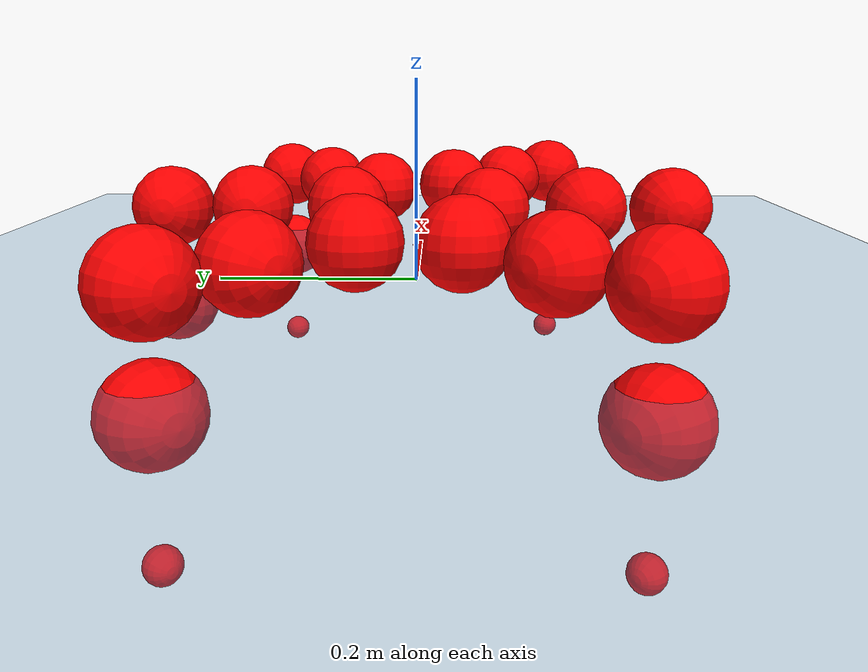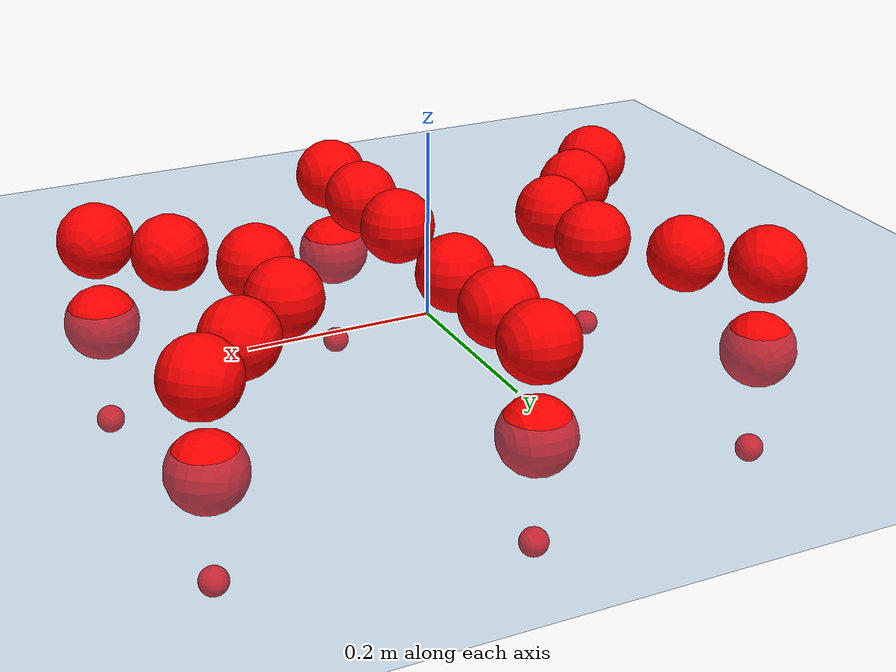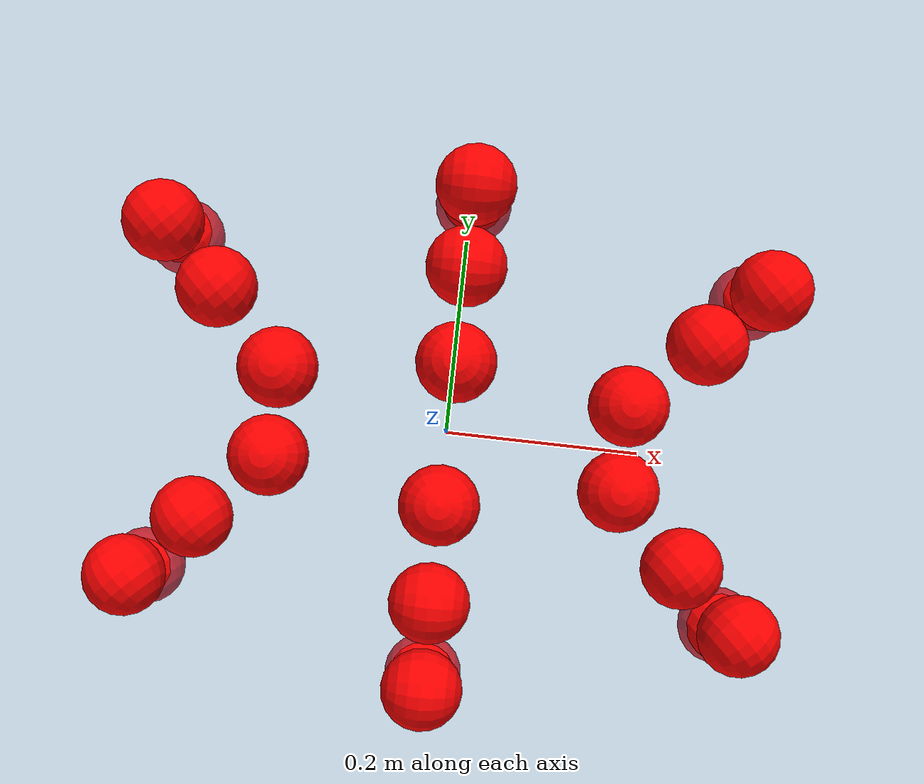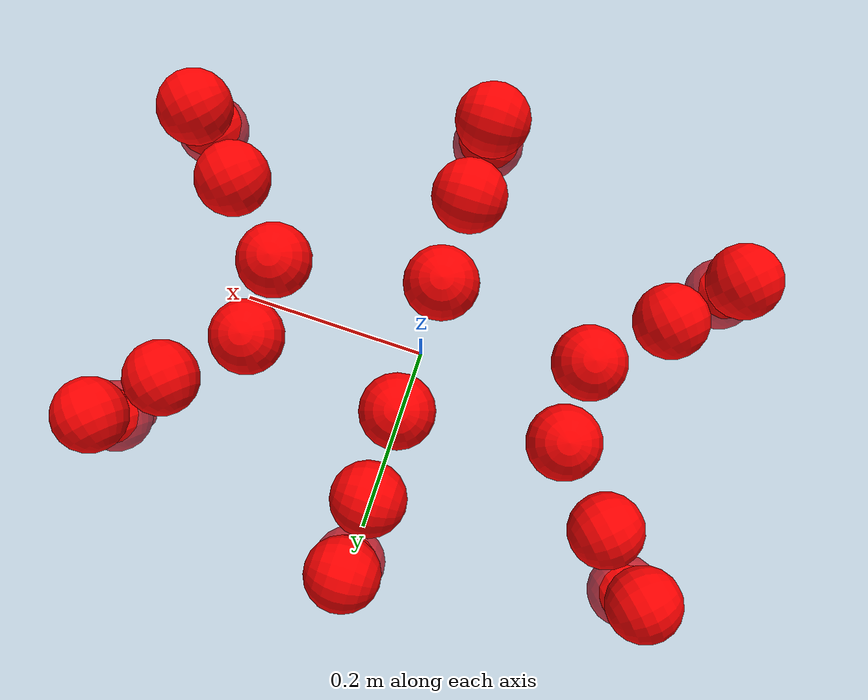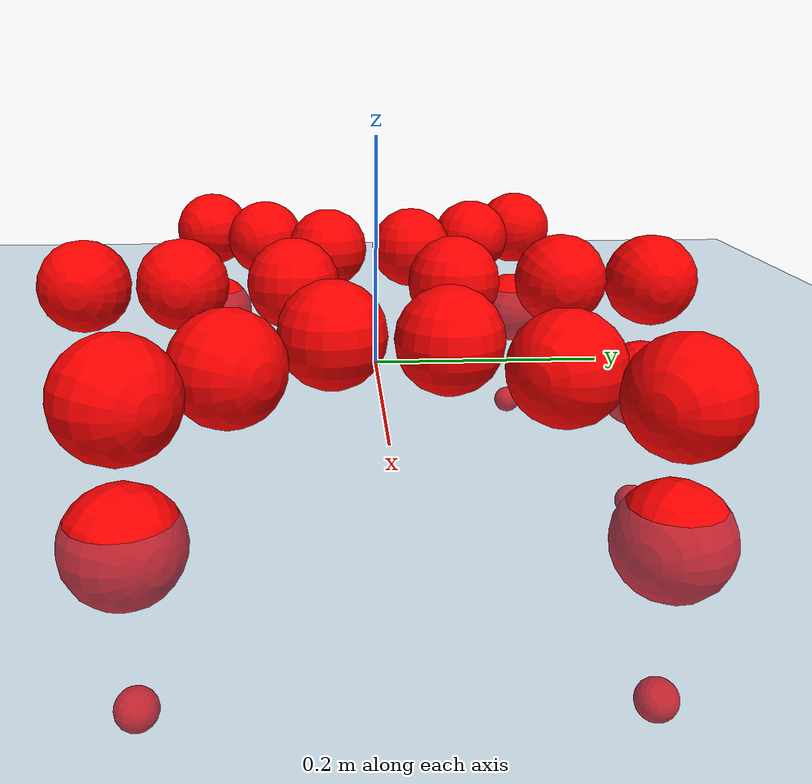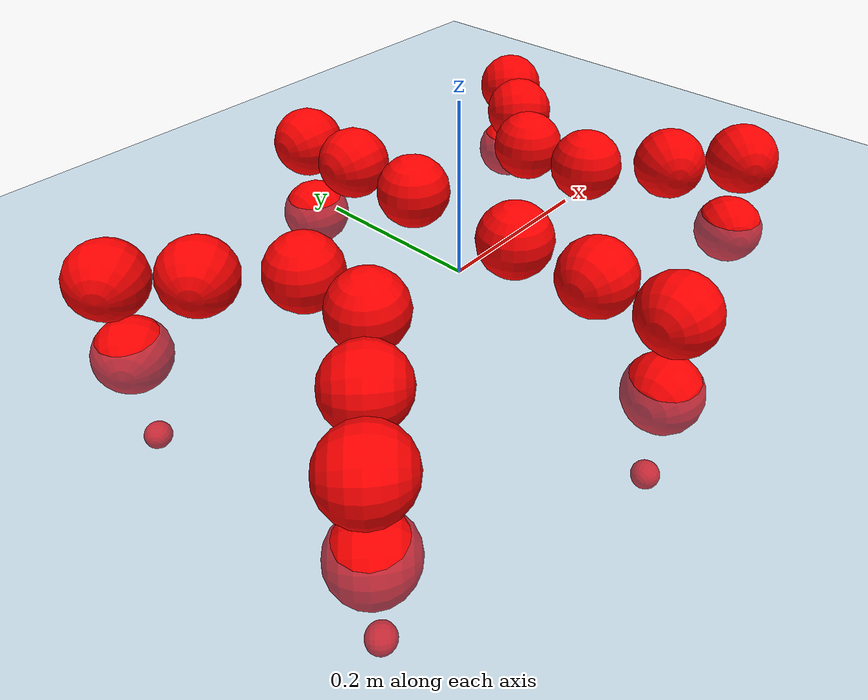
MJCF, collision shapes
<mujoco model="Golem">
  <compiler angle="radian" assetdir="assets" balanceinertia="true" inertiafromgeom="false"/>

  <option timestep="0.005" density="1.2" viscosity="2e-05"/>

  <size nkey="1"/>

  <visual>
    <quality shadowsize="8192"/>
    <map shadowclip="0.5"/>
  </visual>

  <default>
    <default class="/">
      <joint armature="0.01" damping="0.01" frictionloss="0.01"/>
      <geom contype="0" conaffinity="0" group="1" solref="-1000 -80"/>
      <site size="0.01 0.005 0.005" group="5"/>
      <general forcelimited="true" biastype="affine" gainprm="25" biasprm="0 -25 -0.5"/>
      <default class="visual">
        <geom type="mesh" group="2"/>
      </default>
      <default class="collision">
        <geom group="3"/>
      </default>
      <default class="foot">
        <geom size="0.01 0 0" condim="6" group="4" priority="1" solimp="0.015 1 0.01"/>
      </default>
      <default class="reward_collision_sphere">
        <geom group="5" rgba="1 0 0 1"/>
      </default>
    </default>
  </default>

  <asset>
    <texture type="skybox" colorspace="auto" name="//unnamed_texture_0" builtin="gradient" rgb1="0.95 0.95 0.95" rgb2="0.95 0.95 0.95" width="100" height="600"/>
    <texture type="2d" colorspace="auto" name="texplane" builtin="checker" rgb1="0.345 0.575 0.748" rgb2="0.345 0.575 0.748" markrgb="1 1 1" width="512" height="512"/>
    <material name="MatPlane" class="/" texture="texplane" texuniform="true" texrepeat="2 2" specular="0.9"/>
    <mesh name="body" class="/" file="body.stl" scale="0.001 0.001 0.001"/>
    <mesh name="coxa" class="/" file="coxa.stl" scale="0.001 0.001 0.001"/>
    <mesh name="femur" class="/" file="femur.stl" scale="0.001 0.001 0.001"/>
    <mesh name="tibia" class="/" file="tibia.stl" scale="0.001 0.001 0.001"/>
    <mesh name="tarsus" class="/" file="tarsus.stl" scale="0.001 0.001 0.001"/>
  </asset>

  <worldbody>
    <geom name="floor" class="/" size="100 100 0.125" type="plane" group="0" material="MatPlane"/>
    <light name="toplight_shadow" class="/" pos="0 0 5" dir="0.0990148 0.0990148 -0.990148" type="directional" ambient="0.04 0.04 0.04" diffuse="0.55 0.55 0.55" specular="0.12 0.12 0.12"/>
    <light name="toplight_fill" class="/" pos="0 0 5" dir="0.0990148 0.0990148 -0.990148" type="directional" castshadow="false" ambient="0.04 0.04 0.04" diffuse="0.3 0.3 0.3" specular="0.08 0.08 0.08"/>
    <body name="trunk" pos="0.0021082 -9.26457e-05 -0.000406253" quat="1 -2.76475e-05 4.40004e-06 -2.63213e-05">
      <inertial pos="-0.000363114 -0.000381909 -0.0025875" quat="1 -4.28896e-05 -9.12421e-05 2.64546e-05" mass="3.70172" diaginertia="0.0154794 0.00286707 0.0195354"/>
      <joint name="//unnamed_joint_0" type="free"/>
      <geom name="//unnamed_geom_1" class="/" pos="0 0 0.0732474" quat="1 0 0 0" type="mesh" rgba="0.9 0.9 0.9 1" mesh="body"/>
      <site name="imu" class="/" pos="0.151621 0.00838235 0.109714" size="0.0100791"/>
      <camera name="track" class="/" pos="0 -1.56741 0" quat="0.707107 0.707107 0 0" mode="trackcom"/>
      <camera name="ego_camera" class="/" pos="0.14242 0 0.114449" quat="-0.5 -0.5 0.5 0.5"/>
      <body name="coxa_RR" pos="-0.196334 -0.0649217 0.0724235" quat="0.382683 3.50363e-06 -7.69738e-06 -0.92388">
        <inertial pos="0.000277295 -0.00222265 0.00144588" quat="0.999995 -0.00249398 -0.000915241 0.00167703" mass="0.198287" diaginertia="0.0156243 0.00292261 0.0193389"/>
        <joint name="coxa_joint_RR" class="/" pos="0 0 0" axis="0.000600968 -0.00702691 -0.999975" range="-3.14242 3.13849" armature="0.00941868" damping="0" frictionloss="0.0100912"/>
        <geom name="//unnamed_geom_2" class="/" type="mesh" rgba="0.2 0.2 0.2 1" mesh="coxa"/>
        <geom name="//unnamed_geom_3" class="reward_collision_sphere" size="0.0403165" pos="-0.0328662 0 0"/>
        <body name="femur_RR" pos="0.0634154 0.000525012 -0.00134268" quat="0.499807 -0.500085 0.500054 0.500054">
          <inertial pos="0.000688727 0.000901744 0.000188404" quat="0.999988 0.00117137 0.00084528 0.00467145" mass="0.204028" diaginertia="0.0157601 0.00291406 0.0201716"/>
          <joint name="femur_joint_RR" class="/" pos="0 0 0" axis="-0.00400069 0.00391104 -0.999984" range="-3.17211 3.12766" armature="0.0104801" damping="0.0021699" frictionloss="0.0107786"/>
          <geom name="//unnamed_geom_4" class="/" type="mesh" rgba="0.9 0.9 0.9 1" mesh="femur"/>
          <geom name="//unnamed_geom_5" class="reward_collision_sphere" size="0.0403165"/>
          <body name="tibia_RR" pos="-0.000589513 -0.0874546 0.00261355" quat="-0.000916042 0.999999 0.000363036 -0.000256528">
            <inertial pos="-0.00158737 0.00067871 -0.000169877" quat="1 0.000281556 -0.000383331 0.000201669" mass="0.207632" diaginertia="0.015687 0.00298983 0.0196191"/>
            <joint name="tibia_joint_RR" class="/" pos="0 0 0" axis="-0.000246566 0.00630533 0.99998" range="-3.15603 3.13944" armature="0.0100874" damping="0.00308201" frictionloss="0.0100879"/>
            <geom name="//unnamed_geom_6" class="/" type="mesh" rgba="0.2 0.2 0.2 1" mesh="tibia"/>
            <geom name="//unnamed_geom_7" class="reward_collision_sphere" size="0.0403165"/>
            <body name="tarsus_RR" pos="0.0973455 0.00143961 0.00133246" quat="1 4.27073e-05 -8.60191e-05 -2.24235e-05">
              <inertial pos="0.0684151 0.000700767 -0.000763767" quat="0.50203 0.499093 0.497326 0.501537" mass="0.202912" diaginertia="0.0155544 0.0029166 0.0194258"/>
              <joint name="tarsus_joint_RR" class="/" pos="0 0 0" axis="-0.00215812 -0.00302704 0.999993" range="-3.17 3.14319" armature="0.0105089" damping="0.0385336" frictionloss="0.0104228"/>
              <geom name="//unnamed_geom_8" class="/" type="mesh" rgba="0.9 0.9 0.9 1" mesh="tarsus"/>
              <geom name="foot_1" class="foot" size="0.00997697" pos="0.1227 0 0" quat="0 -0.707107 0 0.707107"/>
              <geom name="//unnamed_geom_10" class="reward_collision_sphere" size="0.0403165"/>
              <geom name="//unnamed_geom_11" class="reward_collision_sphere" size="0.0151187" pos="0.11777 0 0"/>
              <site name="foot_1" class="foot" pos="0.1227 0 0" quat="0 -0.707107 0 0.707107" size="0.0100791"/>
            </body>
          </body>
        </body>
      </body>
      <body name="coxa_RM" pos="-0.000774326 -0.105367 0.073809" quat="0.707064 5.91214e-05 2.82868e-05 -0.707149">
        <inertial pos="0.000919249 0.000149279 0.00145488" quat="0.999992 0.00284634 -0.00252078 0.00109492" mass="0.206818" diaginertia="0.015859 0.00287266 0.0197163"/>
        <joint name="coxa_joint_RM" class="/" pos="0 0 0" axis="0.00112355 -0.00066221 -0.999999" range="-3.11845 3.13662" armature="0.010126" damping="0.00462629" frictionloss="0.00885349"/>
        <geom name="//unnamed_geom_12" class="/" type="mesh" rgba="0.2 0.2 0.2 1" mesh="coxa"/>
        <geom name="//unnamed_geom_13" class="reward_collision_sphere" size="0.0403165" pos="-0.0328662 0 0"/>
        <body name="femur_RM" pos="0.0633776 0.000780665 0.000642094" quat="0.49942 -0.499603 0.50049 0.500486">
          <inertial pos="-0.000623271 0.000731437 6.441e-05" quat="0.999987 -0.00413034 0.0026773 0.00144481" mass="0.210105" diaginertia="0.0162372 0.00299253 0.0201366"/>
          <joint name="femur_joint_RM" class="/" pos="0 0 0" axis="0.0009576 0.000320804 -0.999999" range="-3.1285 3.13469" armature="0.0104452" damping="0.0128932" frictionloss="0.0100687"/>
          <geom name="//unnamed_geom_14" class="/" type="mesh" rgba="0.9 0.9 0.9 1" mesh="femur"/>
          <geom name="//unnamed_geom_15" class="reward_collision_sphere" size="0.0403165"/>
          <body name="tibia_RM" pos="0.000242721 -0.0845564 0.00173098" quat="4.74395e-06 1 -3.79272e-06 4.74017e-06">
            <inertial pos="0.000536469 -0.00240986 7.15832e-05" quat="0.999962 0.00414436 0.00748651 0.00172367" mass="0.20315" diaginertia="0.0160465 0.00308004 0.0198737"/>
            <joint name="tibia_joint_RM" class="/" pos="0 0 0" axis="0.00112228 0.00242626 0.999996" stiffness="0.00037583" range="-3.1749 3.18741" armature="0.0100483" damping="0.0131442" frictionloss="0.00977345"/>
            <geom name="//unnamed_geom_16" class="/" type="mesh" rgba="0.2 0.2 0.2 1" mesh="tibia"/>
            <geom name="//unnamed_geom_17" class="reward_collision_sphere" size="0.0403165"/>
            <body name="tarsus_RM" pos="0.0954644 0.000304651 0.000836397" quat="1 -0.000143845 6.59841e-05 6.51151e-05">
              <inertial pos="0.0649429 0.000157756 0.0012198" quat="0.494351 0.500483 0.496374 0.508671" mass="0.210707" diaginertia="0.0154799 0.00296368 0.0194009"/>
              <joint name="tarsus_joint_RM" class="/" pos="0 0 0" axis="1.14856e-05 -0.00119829 0.999999" range="-3.13577 3.15593" armature="0.00964484" damping="0.00436406" frictionloss="0.010217"/>
              <geom name="//unnamed_geom_18" class="/" type="mesh" rgba="0.9 0.9 0.9 1" mesh="tarsus"/>
              <geom name="foot_2" class="foot" size="0.00977912" pos="0.1227 0 0" quat="0 -0.707107 0 0.707107"/>
              <geom name="//unnamed_geom_20" class="reward_collision_sphere" size="0.0403165"/>
              <geom name="//unnamed_geom_21" class="reward_collision_sphere" size="0.0151187" pos="0.11777 0 0"/>
              <site name="foot_2" class="foot" pos="0.1227 0 0" quat="0 -0.707107 0 0.707107" size="0.0100791"/>
            </body>
          </body>
        </body>
      </body>
      <body name="coxa_RF" pos="0.19536 -0.0629948 0.0755649" quat="0.923835 -0.000175298 -0.000165541 -0.38279">
        <inertial pos="0.00101808 -0.00032966 0.000472823" quat="1 -8.34821e-05 0.000778354 0.000187054" mass="0.204788" diaginertia="0.0157413 0.00292328 0.0198967"/>
        <joint name="coxa_joint_RF" class="/" pos="0 0 0" axis="-0.00466277 -0.00263818 -0.999986" range="-3.13685 3.12387" armature="0.0108064" damping="0.00969028" frictionloss="0.0103249"/>
        <geom name="//unnamed_geom_22" class="/" type="mesh" rgba="0.2 0.2 0.2 1" mesh="coxa"/>
        <geom name="//unnamed_geom_23" class="reward_collision_sphere" size="0.0403165" pos="-0.0328662 0 0"/>
        <body name="femur_RF" pos="0.0647891 0.00101487 -0.00211242" quat="0.500158 -0.500272 0.49964 0.49993">
          <inertial pos="-0.000806948 -0.000432844 0.000272087" quat="0.99999 0.00273779 -0.00273864 0.00218261" mass="0.206202" diaginertia="0.0157794 0.0029819 0.0202866"/>
          <joint name="femur_joint_RF" class="/" pos="0 0 0" axis="-0.000665135 2.90591e-05 -1" range="-3.18329 3.11817" armature="0.00923761" damping="0.0125071" frictionloss="0.0106074"/>
          <geom name="//unnamed_geom_24" class="/" type="mesh" rgba="0.9 0.9 0.9 1" mesh="femur"/>
          <geom name="//unnamed_geom_25" class="reward_collision_sphere" size="0.0403165"/>
          <body name="tibia_RF" pos="-0.00170353 -0.0857719 0.00197791" quat="-8.89371e-05 1 -4.60457e-05 -4.72582e-05">
            <inertial pos="-0.00217471 -0.000123046 0.000517103" quat="1 -0.000476921 -0.000174616 -0.000338519" mass="0.208447" diaginertia="0.015704 0.00294281 0.0196271"/>
            <joint name="tibia_joint_RF" class="/" pos="0 0 0" axis="0.00874065 -0.00351202 0.999956" range="-3.12348 3.09365" armature="0.0105415" damping="0.0135377" frictionloss="0.0100858"/>
            <geom name="//unnamed_geom_26" class="/" type="mesh" rgba="0.2 0.2 0.2 1" mesh="tibia"/>
            <geom name="//unnamed_geom_27" class="reward_collision_sphere" size="0.0403165"/>
            <body name="tarsus_RF" pos="0.0952378 0.00179229 0.00183512" quat="0.999999 0.000871156 0.000614173 1.74909e-05">
              <inertial pos="0.0658269 -0.000326983 -0.000225902" quat="0.500115 0.500528 0.499879 0.499477" mass="0.20328" diaginertia="0.0157375 0.00296805 0.0195848"/>
              <joint name="tarsus_joint_RF" class="/" pos="0 0 0" axis="0.000314856 -0.00425983 0.999991" range="-3.12023 3.15272" armature="0.010058" damping="0.00200251" frictionloss="0.0103606"/>
              <geom name="//unnamed_geom_28" class="/" type="mesh" rgba="0.9 0.9 0.9 1" mesh="tarsus"/>
              <geom name="foot_3" class="foot" size="0.0103762" pos="0.1227 0 0" quat="0 -0.707107 0 0.707107"/>
              <geom name="//unnamed_geom_30" class="reward_collision_sphere" size="0.0403165"/>
              <geom name="//unnamed_geom_31" class="reward_collision_sphere" size="0.0151187" pos="0.11777 0 0"/>
              <site name="foot_3" class="foot" pos="0.1227 0 0" quat="0 -0.707107 0 0.707107" size="0.0100791"/>
            </body>
          </body>
        </body>
      </body>
      <body name="coxa_LR" pos="-0.196562 0.0683369 0.0726647" quat="0.382643 6.77361e-05 -0.000118316 0.923896">
        <inertial pos="-0.00178652 -0.0008791 -0.00162973" quat="0.999938 -0.00859241 -0.0065789 -0.00256628" mass="0.20545" diaginertia="0.0159122 0.00307292 0.0195642"/>
        <joint name="coxa_joint_LR" class="/" pos="0 0 0" axis="0.0132097 -0.00343722 -0.999907" range="-3.12125 3.14822" armature="0.010153" damping="0.0188215" frictionloss="0.00947539"/>
        <geom name="//unnamed_geom_32" class="/" type="mesh" rgba="0.2 0.2 0.2 1" mesh="coxa"/>
        <geom name="//unnamed_geom_33" class="reward_collision_sphere" size="0.0403165" pos="-0.0328662 0 0"/>
        <body name="femur_LR" pos="0.0668794 -0.00250241 -0.00232989" quat="0.499878 -0.50007 0.500181 0.499871">
          <inertial pos="0.000729097 0.000365751 -0.000570227" quat="0.999999 0.000533512 0.00056834 0.00137947" mass="0.204957" diaginertia="0.0156863 0.00299445 0.019453"/>
          <joint name="femur_joint_LR" class="/" pos="0 0 0" axis="0.00156481 9.66758e-05 0.999999" range="-3.159 3.12918" armature="0.0098447" damping="0.0132628" frictionloss="0.00891101"/>
          <geom name="//unnamed_geom_34" class="/" type="mesh" rgba="0.9 0.9 0.9 1" mesh="femur"/>
          <geom name="//unnamed_geom_35" class="reward_collision_sphere" size="0.0403165"/>
          <body name="tibia_LR" pos="-0.000180465 -0.0843382 0.000230084" quat="0.000501191 1 -0.000831835 0.000117418">
            <inertial pos="2.87925e-05 0.000538014 1.96354e-05" quat="1 -1.39562e-05 2.53077e-05 -0.000106232" mass="0.200672" diaginertia="0.0157306 0.00296799 0.0193846"/>
            <joint name="tibia_joint_LR" class="/" pos="0 0 0" axis="-0.00409622 -0.00153554 -0.99999" range="-3.12958 3.1159" armature="0.00983522" damping="0.0100138" frictionloss="0.0103443"/>
            <geom name="//unnamed_geom_36" class="/" type="mesh" rgba="0.2 0.2 0.2 1" mesh="tibia"/>
            <geom name="//unnamed_geom_37" class="reward_collision_sphere" size="0.0403165"/>
            <body name="tarsus_LR" pos="0.0957901 -0.00102656 0.00232126" quat="0.999999 -0.000501953 0.00094878 0.000233502">
              <inertial pos="0.0688956 0.000630456 -0.00213422" quat="0.499841 0.500072 0.499948 0.500139" mass="0.201705" diaginertia="0.0155841 0.00289187 0.0192618"/>
              <joint name="tarsus_joint_LR" class="/" pos="0 0 0" axis="0.000656446 0.00459847 -0.999989" range="-3.16836 3.10984" armature="0.0103555" damping="0" frictionloss="0.0095628"/>
              <geom name="//unnamed_geom_38" class="/" type="mesh" rgba="0.9 0.9 0.9 1" mesh="tarsus"/>
              <geom name="foot_4" class="foot" size="0.00993621" pos="0.1227 0 0" quat="0.707107 0 -0.707107 0"/>
              <geom name="//unnamed_geom_40" class="reward_collision_sphere" size="0.0403165"/>
              <geom name="//unnamed_geom_41" class="reward_collision_sphere" size="0.0151187" pos="0.11777 0 0"/>
              <site name="foot_4" class="foot" pos="0.1227 0 0" quat="0.707107 0 -0.707107 0" size="0.0100791"/>
            </body>
          </body>
        </body>
      </body>
      <body name="coxa_LM" pos="0.000664548 0.101756 0.0747219" quat="0.707018 -1.26685e-05 -5.52538e-05 0.707196">
        <inertial pos="-0.000641723 0.00100712 0.0011677" quat="0.999999 0.00108737 -0.00028738 0.00020409" mass="0.20753" diaginertia="0.0160572 0.00300773 0.0199185"/>
        <joint name="coxa_joint_LM" class="/" pos="0 0 0" axis="8.12109e-05 0.000102346 -1" range="-3.11064 3.14785" armature="0.00972701" damping="0.00300902" frictionloss="0.0106649"/>
        <geom name="//unnamed_geom_42" class="/" type="mesh" rgba="0.2 0.2 0.2 1" mesh="coxa"/>
        <geom name="//unnamed_geom_43" class="reward_collision_sphere" size="0.0403165" pos="-0.0328662 0 0"/>
        <body name="femur_LM" pos="0.0618858 0.000402865 0.000866497" quat="0.499883 -0.500049 0.500023 0.500045">
          <inertial pos="-0.000802875 -0.00164527 0.00235383" quat="0.999946 -0.00478401 0.00253265 0.00892579" mass="0.202718" diaginertia="0.0155172 0.00283608 0.0191806"/>
          <joint name="femur_joint_LM" class="/" pos="0 0 0" axis="0.00453247 0.000317655 0.99999" range="-3.14175 3.11488" armature="0.00999163" damping="0.00560063" frictionloss="0.0101543"/>
          <geom name="//unnamed_geom_44" class="/" type="mesh" rgba="0.9 0.9 0.9 1" mesh="femur"/>
          <geom name="//unnamed_geom_45" class="reward_collision_sphere" size="0.0403165"/>
          <body name="tibia_LM" pos="0.000952732 -0.0808731 -0.00103881" quat="-0.000109798 0.999999 -0.000852047 0.000925375">
            <inertial pos="-0.000409556 -0.003098 -0.00101483" quat="0.999999 0.000901768 0.000965621 0.000843583" mass="0.207511" diaginertia="0.0155883 0.00302367 0.0193971"/>
            <joint name="tibia_joint_LM" class="/" pos="0 0 0" axis="0.003413 -0.00103452 -0.999994" range="-3.14374 3.12017" armature="0.0109134" damping="0" frictionloss="0.0102941"/>
            <geom name="//unnamed_geom_46" class="/" type="mesh" rgba="0.2 0.2 0.2 1" mesh="tibia"/>
            <geom name="//unnamed_geom_47" class="reward_collision_sphere" size="0.0403165"/>
            <body name="tarsus_LM" pos="0.0980618 -5.21638e-05 -0.000443822" quat="0.999999 0.000384042 0.000999064 -0.000537237">
              <inertial pos="0.065476 0.000672739 0.000446064" quat="0.499975 0.499927 0.499886 0.500211" mass="0.1999" diaginertia="0.0155069 0.00288784 0.0192588"/>
              <joint name="tarsus_joint_LM" class="/" pos="0 0 0" axis="0.000403857 -0.00176408 -0.999998" range="-3.09229 3.12481" armature="0.0109459" damping="0" frictionloss="0.00959549"/>
              <geom name="//unnamed_geom_48" class="/" type="mesh" rgba="0.9 0.9 0.9 1" mesh="tarsus"/>
              <geom name="foot_5" class="foot" size="0.00976776" pos="0.1227 0 0" quat="0.707107 0 -0.707107 0"/>
              <geom name="//unnamed_geom_50" class="reward_collision_sphere" size="0.0403165"/>
              <geom name="//unnamed_geom_51" class="reward_collision_sphere" size="0.0151187" pos="0.11777 0 0"/>
              <site name="foot_5" class="foot" pos="0.1227 0 0" quat="0.707107 0 -0.707107 0" size="0.0100791"/>
            </body>
          </body>
        </body>
      </body>
      <body name="coxa_LF" pos="0.19719 0.0678881 0.0710375" quat="0.923868 0.000133369 -8.33635e-05 0.382711">
        <inertial pos="-4.85983e-05 0.000594614 0.00127116" quat="0.999997 0.00107904 -0.00219247 -0.000921102" mass="0.199689" diaginertia="0.0154321 0.00286599 0.0190453"/>
        <joint name="coxa_joint_LF" class="/" pos="0 0 0" axis="-0.00450228 0.00203637 -0.999988" range="-3.12271 3.18419" armature="0.0108876" damping="0.00130701" frictionloss="0.00988011"/>
        <geom name="//unnamed_geom_52" class="/" type="mesh" rgba="0.2 0.2 0.2 1" mesh="coxa"/>
        <geom name="//unnamed_geom_53" class="reward_collision_sphere" size="0.0403165" pos="-0.0328662 0 0"/>
        <body name="femur_LF" pos="0.0651967 -0.00133103 0.000282925" quat="0.499179 -0.500424 0.500442 0.499953">
          <inertial pos="0.00223548 0.00027543 0.000376485" quat="0.999991 -0.00331528 0.00247678 0.000300394" mass="0.207587" diaginertia="0.0159394 0.00300273 0.0198129"/>
          <joint name="femur_joint_LF" class="/" pos="0 0 0" axis="-0.000856063 -0.00351209 0.999993" range="-3.13745 3.13274" armature="0.0108965" damping="0.00923941" frictionloss="0.0104569"/>
          <geom name="//unnamed_geom_54" class="/" type="mesh" rgba="0.9 0.9 0.9 1" mesh="femur"/>
          <geom name="//unnamed_geom_55" class="reward_collision_sphere" size="0.0403165"/>
          <body name="tibia_LF" pos="0.000502061 -0.0831322 0.0012955" quat="-0.000386041 1 0.000134315 -9.32265e-05">
            <inertial pos="1.03044e-05 0.00104671 -0.000874723" quat="0.99999 0.00130069 -0.00325724 0.00285637" mass="0.207078" diaginertia="0.0159967 0.00298226 0.0197082"/>
            <joint name="tibia_joint_LF" class="/" pos="0 0 0" axis="-0.00203978 -7.82846e-05 -0.999998" range="-3.13992 3.14912" armature="0.0100389" damping="0" frictionloss="0.009798"/>
            <geom name="//unnamed_geom_56" class="/" type="mesh" rgba="0.2 0.2 0.2 1" mesh="tibia"/>
            <geom name="//unnamed_geom_57" class="reward_collision_sphere" size="0.0403165"/>
            <body name="tarsus_LF" pos="0.0961026 -6.51325e-06 -0.000649306" quat="0.999999 -0.000495019 -0.000310953 0.000843891">
              <inertial pos="0.0667831 0.000882378 0.000723701" quat="0.500811 0.502267 0.497354 0.499555" mass="0.201464" diaginertia="0.0157064 0.00296637 0.0192709"/>
              <joint name="tarsus_joint_LF" class="/" pos="0 0 0" axis="0.000231167 0.00431451 -0.999991" stiffness="0.0276724" range="-3.15862 3.12382" armature="0.00999809" damping="0.030188" frictionloss="0.00981747"/>
              <geom name="//unnamed_geom_58" class="/" type="mesh" rgba="0.9 0.9 0.9 1" mesh="tarsus"/>
              <geom name="foot_6" class="foot" size="0.0102834" pos="0.1227 0 0" quat="0.707107 0 -0.707107 0"/>
              <geom name="//unnamed_geom_60" class="reward_collision_sphere" size="0.0403165"/>
              <geom name="//unnamed_geom_61" class="reward_collision_sphere" size="0.0151187" pos="0.11777 0 0"/>
              <site name="foot_6" class="foot" pos="0.1227 0 0" quat="0.707107 0 -0.707107 0" size="0.0100791"/>
            </body>
          </body>
        </body>
      </body>
    </body>
  </worldbody>

  <contact>
    <pair class="/" geom1="floor" geom2="foot_1" name="//unnamed_contact_0"/>
    <pair class="/" geom1="floor" geom2="foot_2" name="//unnamed_contact_1"/>
    <pair class="/" geom1="floor" geom2="foot_3" name="//unnamed_contact_2"/>
    <pair class="/" geom1="floor" geom2="foot_4" name="//unnamed_contact_3"/>
    <pair class="/" geom1="floor" geom2="foot_5" name="//unnamed_contact_4"/>
    <pair class="/" geom1="floor" geom2="foot_6" name="//unnamed_contact_5"/>
  </contact>

  <actuator>
    <general name="coxa_joint_RR" class="/" joint="coxa_joint_RR" forcerange="-7.5013 7.5013" gainprm="24.2417" biasprm="0 -24.2417 -0.536885"/>
    <general name="femur_joint_RR" class="/" joint="femur_joint_RR" forcerange="-7.39513 7.39513" gainprm="24.2417" biasprm="0 -24.2417 -0.536885"/>
    <general name="tibia_joint_RR" class="/" joint="tibia_joint_RR" forcerange="-7.33223 7.33223" gainprm="24.2417" biasprm="0 -24.2417 -0.536885"/>
    <general name="tarsus_joint_RR" class="/" joint="tarsus_joint_RR" forcerange="-7.6205 7.6205" gainprm="24.2417" biasprm="0 -24.2417 -0.536885"/>
    <general name="coxa_joint_RM" class="/" joint="coxa_joint_RM" forcerange="-6.74477 6.74477" gainprm="24.2417" biasprm="0 -24.2417 -0.536885"/>
    <general name="femur_joint_RM" class="/" joint="femur_joint_RM" forcerange="-7.45893 7.45893" gainprm="24.2417" biasprm="0 -24.2417 -0.536885"/>
    <general name="tibia_joint_RM" class="/" joint="tibia_joint_RM" forcerange="-7.34263 7.34263" gainprm="24.2417" biasprm="0 -24.2417 -0.536885"/>
    <general name="tarsus_joint_RM" class="/" joint="tarsus_joint_RM" forcerange="-7.50791 7.50791" gainprm="24.2417" biasprm="0 -24.2417 -0.536885"/>
    <general name="coxa_joint_RF" class="/" joint="coxa_joint_RF" forcerange="-6.80383 6.80383" gainprm="24.2417" biasprm="0 -24.2417 -0.536885"/>
    <general name="femur_joint_RF" class="/" joint="femur_joint_RF" forcerange="-7.45162 7.45162" gainprm="24.2417" biasprm="0 -24.2417 -0.536885"/>
    <general name="tibia_joint_RF" class="/" joint="tibia_joint_RF" forcerange="-6.71703 6.71703" gainprm="24.2417" biasprm="0 -24.2417 -0.536885"/>
    <general name="tarsus_joint_RF" class="/" joint="tarsus_joint_RF" forcerange="-7.21934 7.21934" gainprm="24.2417" biasprm="0 -24.2417 -0.536885"/>
    <general name="coxa_joint_LR" class="/" joint="coxa_joint_LR" forcerange="-7.33883 7.33883" gainprm="24.2417" biasprm="0 -24.2417 -0.536885"/>
    <general name="femur_joint_LR" class="/" joint="femur_joint_LR" forcerange="-7.42071 7.42071" gainprm="24.2417" biasprm="0 -24.2417 -0.536885"/>
    <general name="tibia_joint_LR" class="/" joint="tibia_joint_LR" forcerange="-7.3001 7.3001" gainprm="24.2417" biasprm="0 -24.2417 -0.536885"/>
    <general name="tarsus_joint_LR" class="/" joint="tarsus_joint_LR" forcerange="-7.07937 7.07937" gainprm="24.2417" biasprm="0 -24.2417 -0.536885"/>
    <general name="coxa_joint_LM" class="/" joint="coxa_joint_LM" forcerange="-7.7304 7.7304" gainprm="24.2417" biasprm="0 -24.2417 -0.536885"/>
    <general name="femur_joint_LM" class="/" joint="femur_joint_LM" forcerange="-7.34362 7.34362" gainprm="24.2417" biasprm="0 -24.2417 -0.536885"/>
    <general name="tibia_joint_LM" class="/" joint="tibia_joint_LM" forcerange="-7.2091 7.2091" gainprm="24.2417" biasprm="0 -24.2417 -0.536885"/>
    <general name="tarsus_joint_LM" class="/" joint="tarsus_joint_LM" forcerange="-7.43568 7.43568" gainprm="24.2417" biasprm="0 -24.2417 -0.536885"/>
    <general name="coxa_joint_LF" class="/" joint="coxa_joint_LF" forcerange="-6.70201 6.70201" gainprm="24.2417" biasprm="0 -24.2417 -0.536885"/>
    <general name="femur_joint_LF" class="/" joint="femur_joint_LF" forcerange="-7.28326 7.28326" gainprm="24.2417" biasprm="0 -24.2417 -0.536885"/>
    <general name="tibia_joint_LF" class="/" joint="tibia_joint_LF" forcerange="-7.20668 7.20668" gainprm="24.2417" biasprm="0 -24.2417 -0.536885"/>
    <general name="tarsus_joint_LF" class="/" joint="tarsus_joint_LF" forcerange="-7.44074 7.44074" gainprm="24.2417" biasprm="0 -24.2417 -0.536885"/>
  </actuator>

  <sensor>
    <gyro site="imu" name="imu_angular_velocity"/>
    <velocimeter site="imu" name="imu_linear_velocity"/>
    <framelinvel objtype="site" objname="foot_1" name="foot_1_global_linear_velocity"/>
    <framelinvel objtype="site" objname="foot_2" name="foot_2_global_linear_velocity"/>
    <framelinvel objtype="site" objname="foot_3" name="foot_3_global_linear_velocity"/>
    <framelinvel objtype="site" objname="foot_4" name="foot_4_global_linear_velocity"/>
    <framelinvel objtype="site" objname="foot_5" name="foot_5_global_linear_velocity"/>
    <framelinvel objtype="site" objname="foot_6" name="foot_6_global_linear_velocity"/>
  </sensor>

  <keyframe>
    <key name="home" qpos="0 0 0.1457 1 0 0 0 0 0 0 0 0 0 0 0 0 0 0 0 0 0 0 0 0 0 0 0 0 0 0 0"/>
  </keyframe>
</mujoco>
